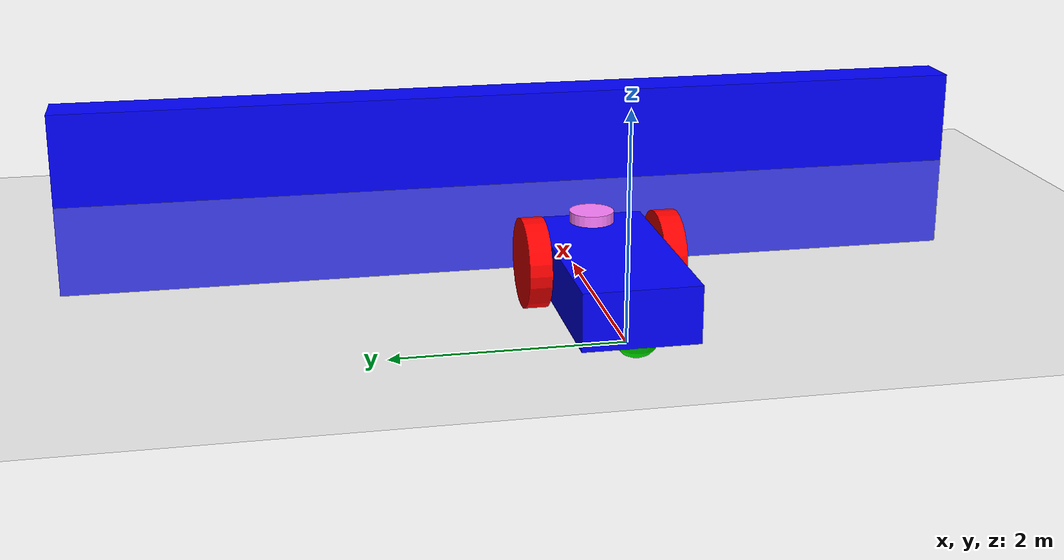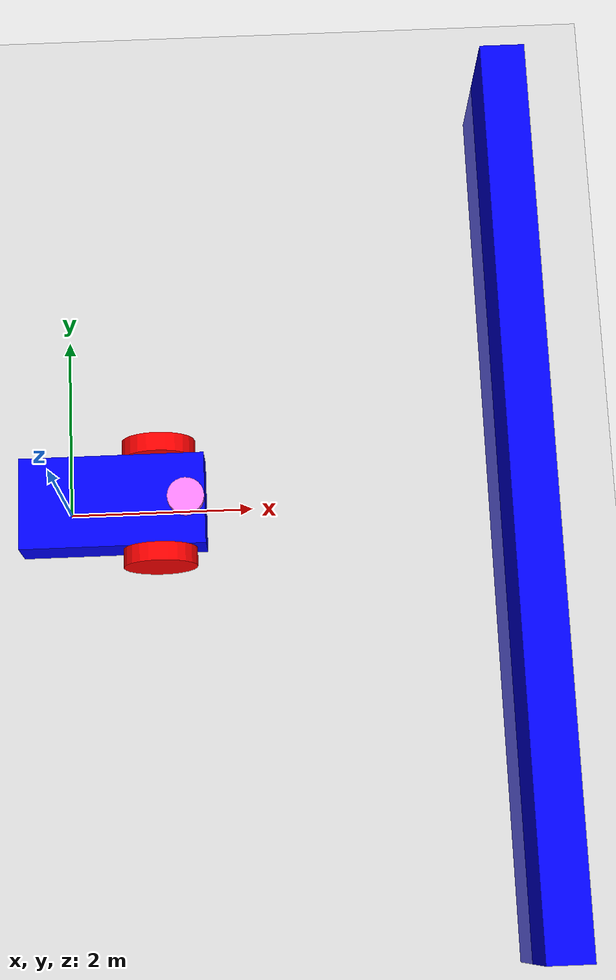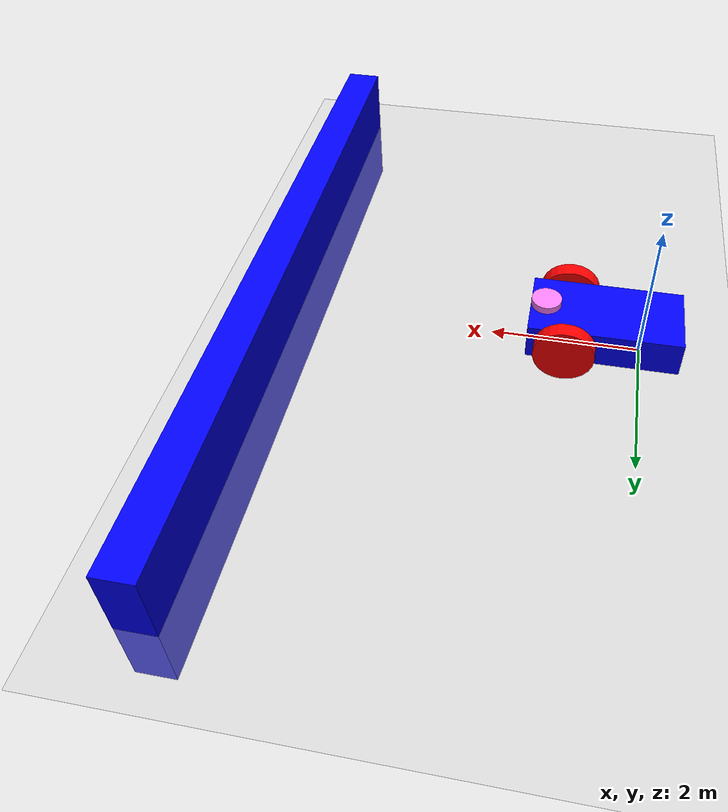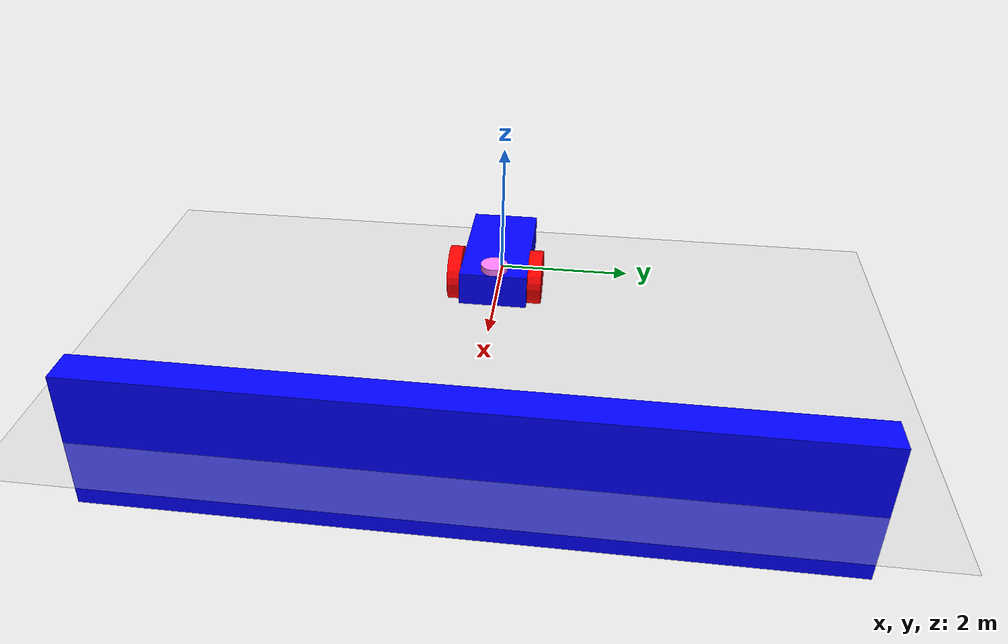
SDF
<?xml version="1.0" ?>
<!--gaba-->
<sdf version="1.8">
    <world name="car_world">
        <physics name="1ms" type="ignored">
            <max_step_size>0.001</max_step_size>
            <real_time_factor>1.0</real_time_factor>
        </physics>

        <plugin
            filename="gz-sim-physics-system"
            name="gz::sim::systems::Physics">
        </plugin>

        <plugin
            filename="gz-sim-user-commands-system"
            name="gz::sim::systems::UserCommands">
        </plugin>

        <plugin
            filename="gz-sim-scene-broadcaster-system"
            name="gz::sim::systems::SceneBroadcaster">
        </plugin>

        <plugin filename="gz-sim-imu-system"
                name="gz::sim::systems::Imu">
        </plugin>

        <plugin filename="gz-sim-contact-system"
                name="gz::sim::systems::Contact">
        </plugin>

        <plugin
          filename="gz-sim-sensors-system"
          name="gz::sim::systems::Sensors">
          <render_engine>ogre2</render_engine>
        </plugin>

        <light type="directional" name="sun">
            <cast_shadows>true</cast_shadows>
            <pose>0 0 10 0 0 0</pose>
            <diffuse>0.8 0.8 0.8 1</diffuse>
            <specular>0.2 0.2 0.2 1</specular>
            <attenuation>
                <range>1000</range>
                <constant>0.9</constant>
                <linear>0.01</linear>
                <quadratic>0.001</quadratic>
            </attenuation>
            <direction>-0.5 0.1 -0.9</direction>
        </light>

        <model name="ground_plane">
            <static>true</static>
            <link name="link">
                <collision name="collision">
                <geometry>
                    <plane>
                    <normal>0 0 1</normal>
                    </plane>
                </geometry>
                </collision>
                <visual name="visual">
                <geometry>
                    <plane>
                    <normal>0 0 1</normal>
                    <size>100 100</size>
                    </plane>
                </geometry>
                <material>
                    <ambient>0.8 0.8 0.8 1</ambient>
                    <diffuse>0.8 0.8 0.8 1</diffuse>
                    <specular>0.8 0.8 0.8 1</specular>
                </material>
                </visual>
            </link>
        </model>

        <!--the wall-->
        <model name='wall'>
            <static>true</static>
            <pose>5 0 0 0 0 0</pose><!--pose relative to the world-->
            <plugin filename="gz-sim-touchplugin-system"
                    name="gz::sim::systems::TouchPlugin">
                <target>vehicle_blue</target>
                <namespace>wall</namespace>
                <time>0.001</time>
                <enabled>true</enabled>
            </plugin>

            <link name='box'>
                <visual name='visual'>
                    <geometry>
                        <box>
                            <size>0.5 10.0 2.0</size>
                        </box>
                    </geometry>
                    <!--let's add color to our link-->
                    <material>
                        <ambient>0.0 0.0 1.0 1</ambient>
                        <diffuse>0.0 0.0 1.0 1</diffuse>
                        <specular>0.0 0.0 1.0 1</specular>
                    </material>
                </visual>
                <!--wall sensor-->
                <sensor name='sensor_contact' type='contact'>
                    <contact>
                        <collision>collision</collision>
                    </contact>
                </sensor>

                <collision name='collision'>
                    <geometry>
                        <box>
                            <size>0.5 10.0 2.0</size>
                        </box>
                    </geometry>
                </collision>
            </link>
        </model>

        <model name='vehicle_blue' canonical_link='chassis'>
            <pose relative_to='world'>0 0 0 0 0 0</pose>   <!--the pose is relative to the world by default-->

            <plugin
                filename="gz-sim-diff-drive-system"
                name="gz::sim::systems::DiffDrive">
                <left_joint>left_wheel_joint</left_joint>
                <right_joint>right_wheel_joint</right_joint>
                <wheel_separation>1.2</wheel_separation>
                <wheel_radius>0.4</wheel_radius>
                <odom_publish_frequency>1</odom_publish_frequency>
                <topic>cmd_vel</topic>
            </plugin>

            <plugin
                 filename="gz-sim-joint-state-publisher-system"
                 name="gz::sim::systems::JointStatePublisher">
                 <update_rate>10</update_rate>
                 <joint_name>left_wheel_joint</joint_name>
                 <joint_name>right_wheel_joint</joint_name>
            </plugin>

            <!--chassis-->
            <link name='chassis'>
                <pose relative_to='__model__'>0.5 0 0.4 0 0 0</pose>

                <inertial> <!--inertial properties of the link mass, inertia matix-->
                    <mass>1.14395</mass>
                    <inertia>
                        <ixx>0.095329</ixx>
                        <ixy>0</ixy>
                        <ixz>0</ixz>
                        <iyy>0.381317</iyy>
                        <iyz>0</iyz>
                        <izz>0.476646</izz>
                    </inertia>
                </inertial>
                <visual name='visual'>
                    <geometry>
                        <box>
                            <size>2.0 1.0 0.5</size>
                        </box>
                    </geometry>
                    <!--Color of the link-->
                    <material>
                        <ambient>0.0 0.0 1.0 1</ambient>
                        <diffuse>0.0 0.0 1.0 1</diffuse>
                        <specular>0.0 0.0 1.0 1</specular>
                    </material>
                </visual>
                <collision name='collision'>
                    <geometry>
                        <box>
                            <size>2.0 1.0 0.5</size>
                        </box>
                    </geometry>
                </collision>
            </link>

                        <!--lidar frame-->
            <frame name="lidar_frame" attached_to='chassis'>
                <pose>0.8 0 0.25 0 0 0</pose>
            </frame>

            <link name='lidar_link'>
                <pose relative_to="lidar_frame"/> <!--angles are in radian-->
                <inertial>
                    <mass>1</mass>
                    <inertia>
                        <ixx>0.013</ixx>
                        <ixy>0</ixy>
                        <ixz>0</ixz>
                        <iyy>0.013</iyy>
                        <iyz>0</iyz>
                        <izz>0.02</izz>
                    </inertia>
                </inertial>

                <visual name='visual'>
                    <geometry>
                        <cylinder>
                            <radius>0.2</radius>
                            <length>0.2</length>
                        </cylinder>
                    </geometry>
                    <material>
                        <ambient>1.0 0.5 1.0 1</ambient>
                        <diffuse>1.0 0.5 1.0 1</diffuse>
                        <specular>1.0 0.5 1.0 1</specular>
                    </material>
                </visual>
                <collision name='collision'>
                    <geometry>
                        <cylinder>
                            <radius>0.2</radius>
                            <length>0.2</length>
                        </cylinder>
                    </geometry>
                </collision>

                <sensor name="imu_sensor" type="imu">
                    <always_on>1</always_on>
                    <update_rate>1</update_rate>
                    <visualize>true</visualize>
                    <topic>imu</topic>
                </sensor>

                <sensor name='gpu_lidar' type='gpu_lidar'>
                    <pose relative_to='lidar_link'>0 0 0 0 0 0</pose>
                    <topic>lidar</topic>
                    <update_rate>1</update_rate>
                    <ray>
                        <scan>
                            <horizontal>
                                <samples>640</samples>
                                <resolution>1</resolution>
                                <min_angle>-1.396263</min_angle>
                                <max_angle>1.396263</max_angle>
                            </horizontal>
                            <vertical>
                                <samples>1</samples>
                                <resolution>0.01</resolution>
                                <min_angle>0</min_angle>
                                <max_angle>0</max_angle>
                            </vertical>
                        </scan>
                        <range>
                            <min>0.08</min>
                            <max>10.0</max>
                            <resolution>0.01</resolution>
                        </range>
                    </ray>
                    <always_on>1</always_on>
                    <visualize>true</visualize>
                </sensor>
            </link>

            <!--Left wheel-->
            <link name='left_wheel'>
                <pose relative_to="chassis">0.5 0.6 0 -1.5707 0 0</pose> <!--angles are in radian-->
                <inertial>
                    <mass>1</mass>
                    <inertia>
                        <ixx>0.043333</ixx>
                        <ixy>0</ixy>
                        <ixz>0</ixz>
                        <iyy>0.043333</iyy>
                        <iyz>0</iyz>
                        <izz>0.08</izz>
                    </inertia>
                </inertial>
                <visual name='visual'>
                    <geometry>
                        <cylinder>
                            <radius>0.4</radius>
                            <length>0.2</length>
                        </cylinder>
                    </geometry>
                    <material>
                        <ambient>1.0 0.0 0.0 1</ambient>
                        <diffuse>1.0 0.0 0.0 1</diffuse>
                        <specular>1.0 0.0 0.0 1</specular>
                    </material>
                </visual>
                <collision name='collision'>
                    <geometry>
                        <cylinder>
                            <radius>0.4</radius>
                            <length>0.2</length>
                        </cylinder>
                    </geometry>
                </collision>
            </link>

            <!--The same as left wheel but with different position-->
            <link name='right_wheel'>
                <pose relative_to="chassis">0.5 -0.6 0 -1.5707 0 0</pose> <!--angles are in radian-->
                <inertial>
                    <mass>1</mass>
                    <inertia>
                        <ixx>0.043333</ixx>
                        <ixy>0</ixy>
                        <ixz>0</ixz>
                        <iyy>0.043333</iyy>
                        <iyz>0</iyz>
                        <izz>0.08</izz>
                    </inertia>
                </inertial>
                <visual name='visual'>
                    <geometry>
                        <cylinder>
                            <radius>0.4</radius>
                            <length>0.2</length>
                        </cylinder>
                    </geometry>
                    <material>
                        <ambient>1.0 0.0 0.0 1</ambient>
                        <diffuse>1.0 0.0 0.0 1</diffuse>
                        <specular>1.0 0.0 0.0 1</specular>
                    </material>
                </visual>
                <collision name='collision'>
                    <geometry>
                        <cylinder>
                            <radius>0.4</radius>
                            <length>0.2</length>
                        </cylinder>
                    </geometry>
                </collision>
            </link>

            <!--arbitrary frame-->
            <frame name="caster_frame" attached_to='chassis'>
                <pose>-0.8 0 -0.2 0 0 0</pose>
            </frame>

            <!--caster wheel-->
            <link name='caster'>
                <pose relative_to='caster_frame'/>
                <inertial>
                    <mass>1</mass>
                    <inertia>
                        <ixx>0.016</ixx>
                        <ixy>0</ixy>
                        <ixz>0</ixz>
                        <iyy>0.016</iyy>
                        <iyz>0</iyz>
                        <izz>0.016</izz>
                    </inertia>
                </inertial>
                <visual name='visual'>
                    <geometry>
                        <sphere>
                            <radius>0.2</radius>
                        </sphere>
                    </geometry>
                    <material>
                        <ambient>0.0 1 0.0 1</ambient>
                        <diffuse>0.0 1 0.0 1</diffuse>
                        <specular>0.0 1 0.0 1</specular>
                    </material>
                </visual>
                <collision name='collision'>
                    <geometry>
                        <sphere>
                            <radius>0.2</radius>
                        </sphere>
                    </geometry>
                </collision>
            </link>

            <!--left wheel joint-->
            <joint name='left_wheel_joint' type='revolute'>
                <pose relative_to='left_wheel'/>
                <parent>chassis</parent>
                <child>left_wheel</child>
                <axis>
                    <xyz expressed_in='__model__'>0 1 0</xyz> <!--can be descired to any frame or even arbitrary frames-->
                    <limit>
                        <lower>-1.79769e+308</lower>    <!--negative infinity-->
                        <upper>1.79769e+308</upper>     <!--positive infinity-->
                    </limit>
                </axis>
            </joint>

            <!--right wheel joint-->
            <joint name='right_wheel_joint' type='revolute'>
                <pose relative_to='right_wheel'/>
                <parent>chassis</parent>
                <child>right_wheel</child>
                <axis>
                    <xyz expressed_in='__model__'>0 1 0</xyz>

                    <limit>
                        <lower>-1.79769e+308</lower>    <!--negative infinity-->
                        <upper>1.79769e+308</upper>     <!--positive infinity-->
                    </limit>
                </axis>
            </joint>

            <!--caster wheel joint--> <!--pose defult value is the child-->
            <joint name='caster_wheel' type='ball'>
                <parent>chassis</parent>
                <child>caster</child>
            </joint>

            <joint name='lidar_joint' type='fixed'>
                <parent>chassis</parent>
                <child>lidar_link</child>
            </joint>
        </model>

        <!-- Moving Forward-->
        <plugin filename="gz-sim-triggered-publisher-system"
                name="gz::sim::systems::TriggeredPublisher">
            <input type="gz.msgs.Int32" topic="/keyboard/keypress">
                <match field="data">16777235</match>
            </input>
            <output type="gz.msgs.Twist" topic="/cmd_vel">
                linear: {x: 0.5}, angular: {z: 0.0}
            </output>
        </plugin>

        <!-- Moving Backward-->
        <plugin filename="gz-sim-triggered-publisher-system"
                name="gz::sim::systems::TriggeredPublisher">
            <input type="gz.msgs.Int32" topic="/keyboard/keypress">
                <match field="data">16777237</match>
            </input>
            <output type="gz.msgs.Twist" topic="/cmd_vel">
                linear: {x: -0.5}, angular: {z: 0.0}
            </output>
        </plugin>

        <!-- Moving Right-->
        <plugin filename="gz-sim-triggered-publisher-system"
                name="gz::sim::systems::TriggeredPublisher">
            <input type="gz.msgs.Int32" topic="/keyboard/keypress">
                <match field="data">16777236</match>
            </input>
            <output type="gz.msgs.Twist" topic="/cmd_vel">
                linear: {x: 0.0}, angular: {z: -0.5}
            </output>
        </plugin>

        <!-- Moving Left-->
        <plugin filename="gz-sim-triggered-publisher-system"
                name="gz::sim::systems::TriggeredPublisher">
            <input type="gz.msgs.Int32" topic="/keyboard/keypress">
                <match field="data">16777234</match>
            </input>
            <output type="gz.msgs.Twist" topic="/cmd_vel">
                linear: {x: 0.0}, angular: {z: 0.5}
            </output>
        </plugin>

        <!--veggstoppsensor-->
        <plugin filename="gz-sim-triggered-publisher-system"
                name="gz::sim::systems::TriggeredPublisher">
            <input type="gz.msgs.Boolean" topic="/wall/touched">
                <match>data: true</match>
            </input>
            <output type="gz.msgs.Twist" topic="/cmd_vel">
                linear: {x: 0.0}, angular: {z: 0.0}
            </output>
        </plugin>
    </world>
</sdf>
